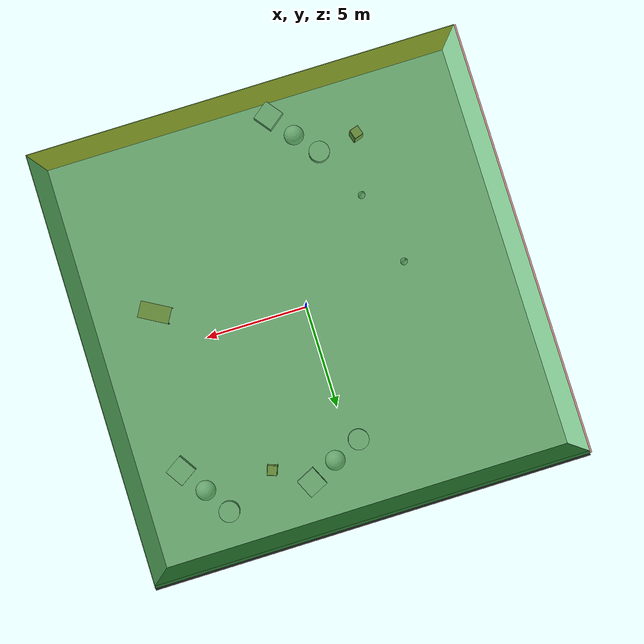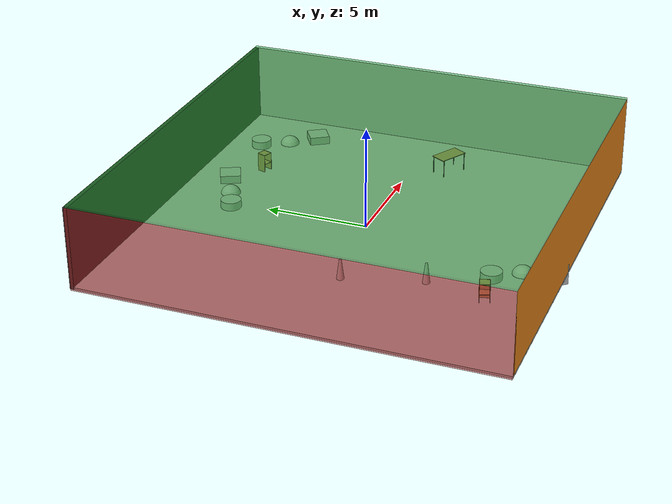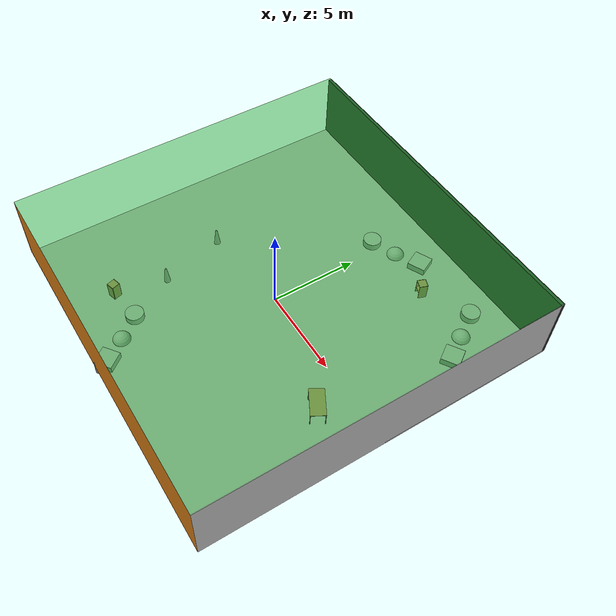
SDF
<sdf version="1.4">
 <world name="default">
  <physics type="ode">
   <max_step_size>0.001</max_step_size>
   <real_time_factor>1</real_time_factor>
   <real_time_update_rate>1000</real_time_update_rate>
   <gravity>0 0 -9.8</gravity>
  </physics>
  <scene><ambient>0.4 0.4 0.4 1</ambient><background>0.7 0.7 0.7 1</background><shadows>1</shadows></scene>
  <model name="Surrounding">
   <static>1</static>
   <link name="Ceiling">
    <collision name="Ceiling_Collision"><geometry><box><size>20 20 0.1</size></box></geometry></collision>
    <visual name="Ceiling_Visual">
     <geometry><box><size>20 20 0.1</size></box></geometry>
     <material>
      <script><uri>file://media/materials/scripts/gazebo.material</uri><name>Gazebo/GreenTransparent</name></script>
     </material>
    </visual>
    <pose>0 0 4.05 0 0 0</pose>
   </link>
   <link name="Wall_South">
    <collision name="Wall_South_Collision">
     <geometry><box><size>20 0 4</size></box></geometry>
     <pose>0 0 2 0 -0 0</pose>
    </collision>
    <visual name="Wall_South_Visual">
     <pose>0 0 2 0 -0 0</pose>
     <geometry><box><size>20 0 4</size></box></geometry>
     <material>
      <script><uri>file://media/materials/scripts/gazebo.material</uri><name>Gazebo/Orange</name></script>
     </material>
    </visual>
    <velocity_decay><linear>0</linear><angular>0</angular></velocity_decay>
    <pose>0 -10 0 0 -0 0</pose>
   </link>
   <link name="Wall_East">
    <collision name="Wall_21_Collision">
     <geometry><box><size>20 0 4</size></box></geometry>
     <pose>0 0 2 0 -0 0</pose>
    </collision>
    <visual name="Wall_21_Visual">
     <pose>0 0 2 0 -0 0</pose>
     <geometry><box><size>20 0 4</size></box></geometry>
     <material>
      <script><uri>file://media/materials/scripts/gazebo.material</uri><name>Gazebo/LightOn</name></script>
     </material>
    </visual>
    <velocity_decay><linear>0</linear><angular>0</angular></velocity_decay>
    <pose>10 0 0 0 -0 1.5708</pose>
   </link>
   <link name="Wall_North">
    <collision name="Wall_22_Collision">
     <geometry><box><size>20 0.2 4</size></box></geometry>
     <pose>0 0 2 0 -0 0</pose>
    </collision>
    <visual name="Wall_22_Visual">
     <pose>0 0 2 0 -0 0</pose>
     <geometry><box><size>20 0.2 4</size></box></geometry>
     <material>
      <script><uri>file://media/materials/scripts/gazebo.material</uri><name>Gazebo/Black</name></script>
     </material>
    </visual>
    <velocity_decay><linear>0</linear><angular>0</angular></velocity_decay>
    <pose>0 10 0 0 -0 0</pose>
   </link>
   <link name="Wall_West">
    <collision name="Wall_23_Collision">
     <geometry><box><size>20 0.2 4</size></box></geometry>
     <pose>0 0 2 0 -0 0</pose>
    </collision>
    <visual name="Wall_23_Visual">
     <pose>0 0 2 0 -0 0</pose>
     <geometry><box><size>20 0.2 4</size></box></geometry>
     <material>
      <script><uri>file://media/materials/scripts/gazebo.material</uri><name>Gazebo/RedTransparent</name></script>
     </material>
    </visual>
    <velocity_decay><linear>0</linear><angular>0</angular></velocity_decay>
    <pose>-10 0 0 0 0 -1.5708</pose>
   </link>
   <link name="Ground_link">
    <collision name="collision">
     <pose>0 0 .05 0 -0 0</pose>
     <geometry><box><size>20 20 0.1</size></box></geometry>
    </collision>
    <visual name="visual">
     <pose>0 0 .05 0 -0 0</pose>
     <geometry><box><size>20 20 0.1</size></box></geometry>
     <material>
      <script><uri>file://media/materials/scripts/gazebo.material</uri><name>Gazebo/CloudySky</name></script>
     </material>
    </visual>
   </link>
   <static>1</static>
  </model>
  <spherical_coordinates>
   <surface_model>EARTH_WGS84</surface_model>
   <latitude_deg>0</latitude_deg>
   <longitude_deg>0</longitude_deg>
   <elevation>0</elevation>
   <heading_deg>0</heading_deg>
  </spherical_coordinates>
  <light name="lightball_0" type="diffuse">
   <diffuse>0.8 0.8 0.8 1</diffuse>
   <specular>0.2 0.2 0.2 1</specular>
   <attenuation>
    <range>100</range>
    <constant>0.7</constant>
    <linear>0.01</linear>
    <quadratic>0.001</quadratic>
   </attenuation>
   <direction>-0.5 0.1 -0.9</direction>
   <pose>5.87741416284 -8.74062438786 3.64575915899 0 0 0</pose>
  </light>
  <include><uri>model://cabinet</uri><pose>-4.72464862096 -7.21365525709 0 0 0 0.291895973669</pose></include>
  <include>
   <uri>model://construction_cone</uri>
   <pose>-4.14750158939 -4.37970488862 0 0 0 2.27519247868</pose>
  </include>
  <include>
   <uri>model://construction_cone</uri>
   <pose>-5.14730608525 -0.715229753217 0 0 0 2.84981435327</pose>
  </include>
  <include>
   <uri>model://textured_shapes</uri>
   <pose>-1.88353873435 -8.14280129743 0 0 0 0.655632929261</pose>
  </include>
  <include>
   <uri>model://textured_shapes</uri>
   <pose>0.841377745166 7.40107432617 0 0 0 2.01489281912</pose>
  </include>
  <include><uri>model://cabinet</uri><pose>3.80706837382 6.88719668872 0 0 0 1.22358898731</pose></include>
  <include><uri>model://table</uri><pose>6.92709954512 -1.84179014752 0 0 0 2.62549934932</pose></include>
  <include>
   <uri>model://textured_shapes</uri>
   <pose>7.16328366275 6.94391065792 0 0 0 0.575223606802</pose>
  </include>
 </world>
</sdf>

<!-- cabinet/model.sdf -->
<sdf version="1.5">
  <model name="cabinet">
    <static>true</static>
    <link name="cabinet_bottom_plate">
      <inertial>
        <pose>0 0 -1 0 0 0</pose>
        <inertia>
          <ixx>2.050000</ixx>
          <ixy>0</ixy>
          <ixz>0</ixz>
          <iyy>2.050000</iyy>
          <iyz>0</iyz>
          <izz>2.050000</izz>
        </inertia>
        <mass>25.000000</mass>
      </inertial>
      <collision name="cabinet_bottom_plate_geom">
        <pose>0 0 0.010000 0 0 0</pose>
        <geometry>
          <box>
            <size>0.450000 0.450000 0.020000</size>
          </box>
        </geometry>
      </collision>
      <visual name="cabinet_bottom_plate_geom_visual">
        <pose>0 0 0.010000 0 0 0</pose>
        <geometry>
          <box>
            <size>0.450000 0.450000 0.020000</size>
          </box>
        </geometry>
        <material>
          <script>
            <uri>model://media/materials/scripts/gazebo.material</uri>
            <name>Gazebo/Wood</name>
          </script>
        </material>
      </visual>
      <collision name="cabinet_bottom_plate_geom_cabinet_back_plate">
        <pose>0.235000 0 0.510000 0 0 0</pose>
        <geometry>
          <box>
            <size>0.020000 0.450000 1.020000</size>
          </box>
        </geometry>
      </collision>
      <visual name="cabinet_bottom_plate_geom_cabinet_back_plate_visual">
        <pose>0.235000 0 0.510000 0 0 0</pose>
        <geometry>
          <box>
            <size>0.020000 0.450000 1.020000</size>
          </box>
        </geometry>
        <material>
          <script>
            <uri>model://media/materials/scripts/gazebo.material</uri>
            <name>Gazebo/Wood</name>
          </script>
        </material>
      </visual>
      <collision name="cabinet_bottom_plate_geom_cabinet_left_plate">
        <pose>0 0.235000 0.510000 0 0 0</pose>
        <geometry>
          <box>
            <size>0.450000 0.020000 1.020000</size>
          </box>
        </geometry>
      </collision>
      <visual name="cabinet_bottom_plate_geom_cabinet_left_plate_visual">
        <pose>0 0.235000 0.510000 0 0 0</pose>
        <geometry>
          <box>
            <size>0.450000 0.020000 1.020000</size>
          </box>
        </geometry>
        <material>
          <script>
            <uri>model://media/materials/scripts/gazebo.material</uri>
            <name>Gazebo/Wood</name>
          </script>
        </material>
      </visual>
      <collision name="cabinet_bottom_plate_geom_cabinet_middle_plate">
        <pose>0 0 0.510000 0 0 0</pose>
        <geometry>
          <box>
            <size>0.450000 0.450000 0.020000</size>
          </box>
        </geometry>
      </collision>
      <visual name="cabinet_bottom_plate_geom_cabinet_middle_plate_visual">
        <pose>0 0 0.510000 0 0 0</pose>
        <geometry>
          <box>
            <size>0.450000 0.450000 0.020000</size>
          </box>
        </geometry>
        <material>
          <script>
            <uri>model://media/materials/scripts/gazebo.material</uri>
            <name>Gazebo/Wood</name>
          </script>
        </material>
      </visual>
      <collision name="cabinet_bottom_plate_geom_cabinet_right_plate">
        <pose>0 -0.235000 0.510000 0 0 0</pose>
        <geometry>
          <box>
            <size>0.450000 0.020000 1.020000</size>
          </box>
        </geometry>
      </collision>
      <visual name="cabinet_bottom_plate_geom_cabinet_right_plate_visual">
        <pose>0 -0.235000 0.510000 0 0 0</pose>
        <geometry>
          <box>
            <size>0.450000 0.020000 1.020000</size>
          </box>
        </geometry>
        <material>
          <script>
            <uri>model://media/materials/scripts/gazebo.material</uri>
            <name>Gazebo/Wood</name>
          </script>
        </material>
      </visual>
      <collision name="cabinet_bottom_plate_geom_cabinet_top_plate">
        <pose>0 0 1.010000 0 0 0</pose>
        <geometry>
          <box>
            <size>0.450000 0.450000 0.020000</size>
          </box>
        </geometry>
      </collision>
      <visual name="cabinet_bottom_plate_geom_cabinet_top_plate_visual">
        <pose>0 0 1.010000 0 0 0</pose>
        <geometry>
          <box>
            <size>0.450000 0.450000 0.020000</size>
          </box>
        </geometry>
        <material>
          <script>
            <uri>model://media/materials/scripts/gazebo.material</uri>
            <name>Gazebo/Wood</name>
          </script>
        </material>
      </visual>
    </link>
  </model>
</sdf>

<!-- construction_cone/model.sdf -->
<sdf version="1.5">
  <model name="Construction Cone">
    <link name="link">
      <collision name="collision">
        <geometry>
          <mesh>
            <scale>10 10 10</scale>
            <uri>file://isr-testbed/construction_cone/meshes/construction_cone.dae</uri>
          </mesh>
        </geometry>
      </collision>
      <visual name="visual">
        <geometry>
          <mesh>
            <scale>10 10 10</scale>
            <uri>file://isr-testbed/construction_cone/meshes/construction_cone.dae</uri>
          </mesh>
        </geometry>
      </visual>
    </link>
  </model>
</sdf>

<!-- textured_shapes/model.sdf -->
<sdf version="1.6">
  <model name="textured_shapes">
    <pose>0 0 0.5 0 0 0</pose>
    <link name="box">
      <pose>0 -1.5 0 0 0 0</pose>
      <collision name="collision">
        <geometry>
          <box>
            <size>1 1 1</size>
          </box>
        </geometry>
      </collision>
      <visual name="visual">
        <geometry>
          <box>
            <size>1 1 1</size>
          </box>
        </geometry>
        <material>
          <script>
            <uri>model://../model_source/models/textured_shapes/materials/scripts</uri>
            <uri>model://../model_source/models/textured_shapes/materials/textures</uri>
            <name>TexturedShape/Squares</name>
          </script>
        </material>
      </visual>
    </link>
    <link name="sphere">
      <collision name="collision">
        <geometry>
          <sphere>
            <radius>0.5</radius>
          </sphere>
        </geometry>
      </collision>
      <visual name="visual">
        <geometry>
          <sphere>
            <radius>0.5</radius>
          </sphere>
        </geometry>
        <material>
          <script>
            <uri>model://../model_source/models/textured_shapes/materials/scripts</uri>
            <uri>model://../model_source/models/textured_shapes/materials/textures</uri>
            <name>TexturedShape/Squares</name>
          </script>
        </material>
      </visual>
    </link>
    <link name="cylinder">
      <pose>0 1.5 0 0 0 0</pose>
      <collision name="collision">
        <geometry>
          <cylinder>
            <radius>0.5</radius>
            <length>1</length>
          </cylinder>
        </geometry>
      </collision>
      <visual name="visual">
        <geometry>
          <cylinder>
            <radius>0.5</radius>
            <length>1</length>
          </cylinder>
        </geometry>
        <material>
          <script>
            <uri>model://../model_source/models/textured_shapes/materials/scripts</uri>
            <uri>model://../model_source/models/textured_shapes/materials/textures</uri>
            <name>TexturedShape/Squares</name>
          </script>
        </material>
      </visual>
    </link>
  </model>
</sdf>

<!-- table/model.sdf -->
<sdf version="1.5">
  <model name="table">
    <static>true</static>
    <link name="link">
      <collision name="surface">
        <pose>0 0 1.0 0 0 0</pose>
        <geometry>
          <box>
            <size>1.5 0.8 0.03</size>
          </box>
        </geometry>
        <surface>
          <friction>
            <ode>
              <mu>0.6</mu>
              <mu2>0.6</mu2>
            </ode>
          </friction>
        </surface>
      </collision>
      <visual name="visual1">
        <pose>0 0 1.0 0 0 0</pose>
        <geometry>
          <box>
            <size>1.5 0.8 0.03</size>
          </box>
        </geometry>
        <material>
          <script>
            <uri>model://media/materials/scripts/gazebo.material</uri>
            <name>Gazebo/Wood</name>
          </script>
        </material>
      </visual>
      <collision name="front_left_leg">
        <pose>0.68 0.38 0.5 0 0 0</pose>
        <geometry>
          <cylinder>
            <radius>0.02</radius>
            <length>1.0</length>
          </cylinder>
        </geometry>
      </collision>
      <visual name="front_left_leg">
        <pose>0.68 0.38 0.5 0 0 0</pose>
        <geometry>
          <cylinder>
            <radius>0.02</radius>
            <length>1.0</length>
          </cylinder>
        </geometry>
        <material>
          <script>
            <uri>model://media/materials/scripts/gazebo.material</uri>
            <name>Gazebo/Grey</name>
          </script>
        </material>
      </visual>
      <collision name="front_right_leg">
        <pose>0.68 -0.38 0.5 0 0 0</pose>
        <geometry>
          <cylinder>
            <radius>0.02</radius>
            <length>1.0</length>
          </cylinder>
        </geometry>
      </collision>
      <visual name="front_right_leg">
        <pose>0.68 -0.38 0.5 0 0 0</pose>
        <geometry>
          <cylinder>
            <radius>0.02</radius>
            <length>1.0</length>
          </cylinder>
        </geometry>
        <material>
          <script>
            <uri>model://media/materials/scripts/gazebo.material</uri>
            <name>Gazebo/Grey</name>
          </script>
        </material>
      </visual>
      <collision name="back_right_leg">
        <pose>-0.68 -0.38 0.5 0 0 0</pose>
        <geometry>
          <cylinder>
            <radius>0.02</radius>
            <length>1.0</length>
          </cylinder>
        </geometry>
      </collision>
      <visual name="back_right_leg">
        <pose>-0.68 -0.38 0.5 0 0 0</pose>
        <geometry>
          <cylinder>
            <radius>0.02</radius>
            <length>1.0</length>
          </cylinder>
        </geometry>
        <material>
          <script>
            <uri>model://media/materials/scripts/gazebo.material</uri>
            <name>Gazebo/Grey</name>
          </script>
        </material>
      </visual>
      <collision name="back_left_leg">
        <pose>-0.68 0.38 0.5 0 0 0</pose>
        <geometry>
          <cylinder>
            <radius>0.02</radius>
            <length>1.0</length>
          </cylinder>
        </geometry>
      </collision>
      <visual name="back_left_leg">
        <pose>-0.68 0.38 0.5 0 0 0</pose>
        <geometry>
          <cylinder>
            <radius>0.02</radius>
            <length>1.0</length>
          </cylinder>
        </geometry>
        <material>
          <script>
            <uri>model://media/materials/scripts/gazebo.material</uri>
            <name>Gazebo/Grey</name>
          </script>
        </material>
      </visual>
    </link>
  </model>
</sdf>
